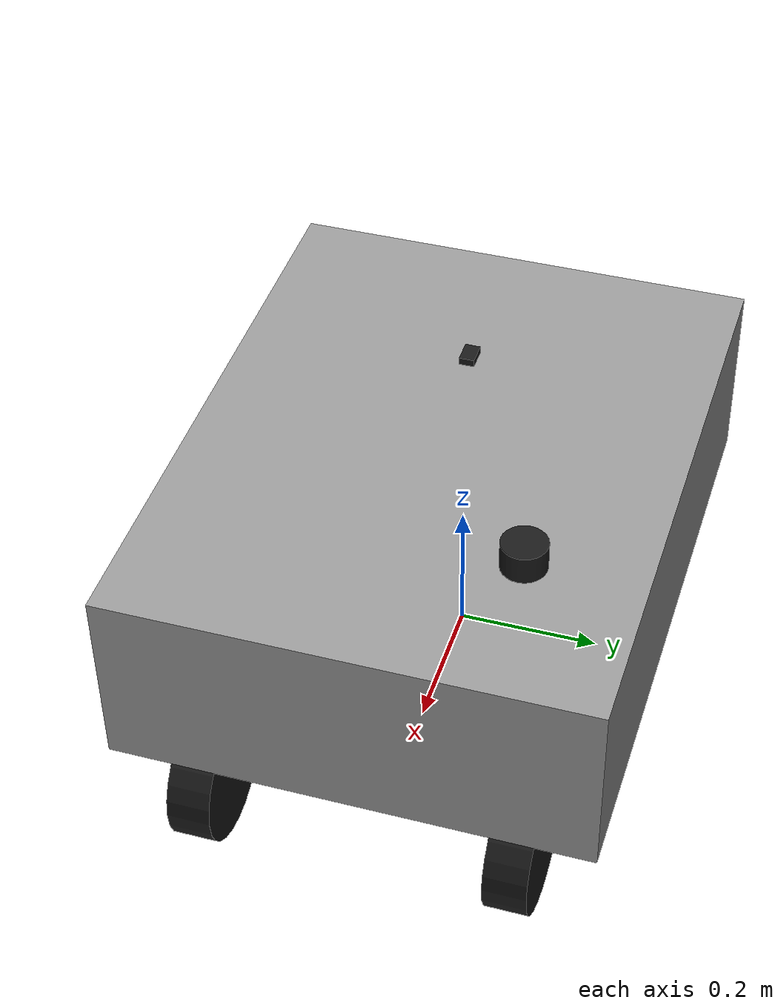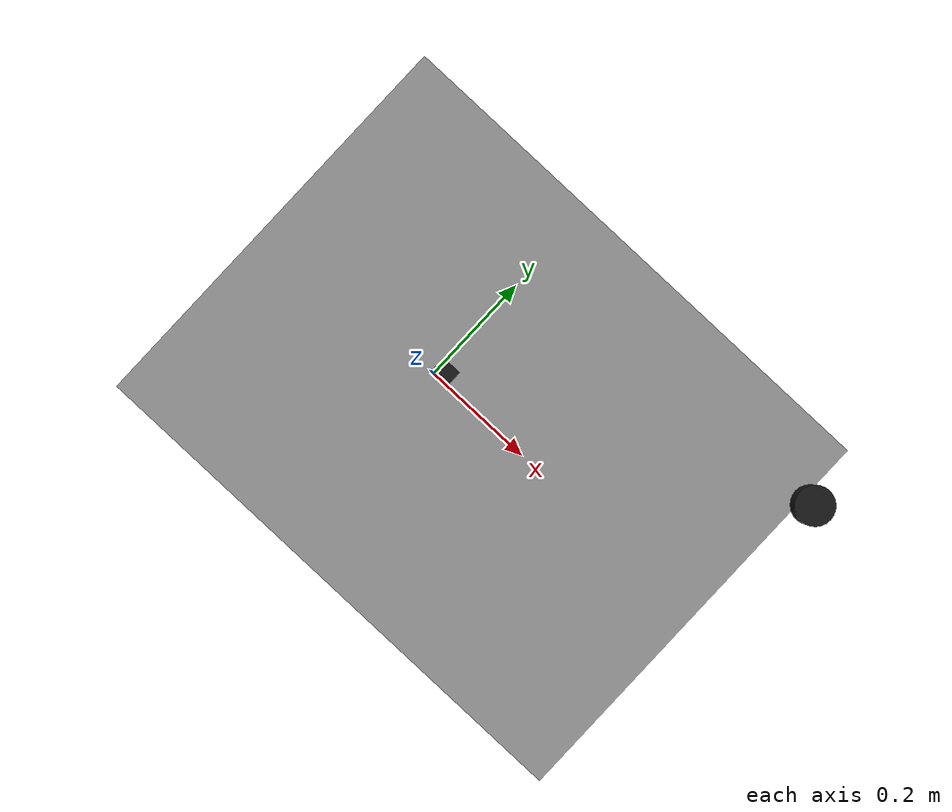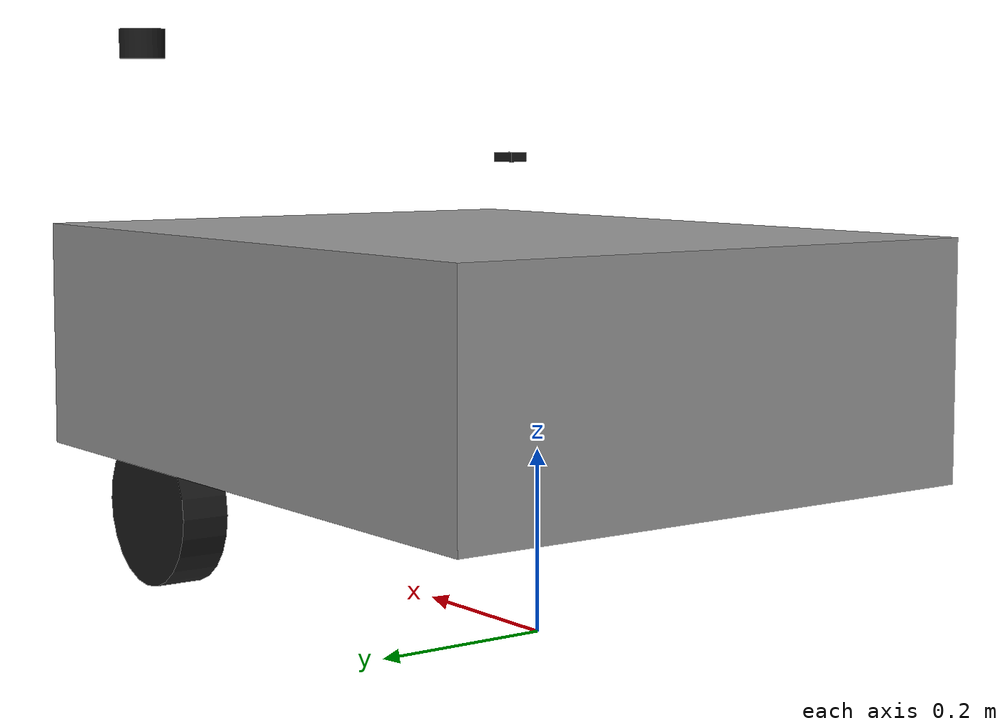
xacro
<?xml version="1.0"?>
<robot xmlns:xacro="http://www.ros.org/wiki/xacro" name="wheelchair">

  <!-- Arguments                                                 -->

  <!-- Base body -->
  <xacro:arg name="base_length" default="0.820"/>
  <xacro:arg name="base_width"  default="0.640"/>
  <xacro:arg name="base_height" default="0.260"/>
  <xacro:arg name="base_z"      default="0.171"/>

  <!-- LiDAR mount -->
  <xacro:arg name="lidar_x" default="0.500"/>
  <xacro:arg name="lidar_y" default="0.210"/>
  <xacro:arg name="lidar_z" default="0.471"/>
  <xacro:arg name="lidar_roll"  default="0.0"/>
  <xacro:arg name="lidar_pitch" default="0.0"/> <!-- TODO: Figure out if pitch should be 6.9 deg up -->
  <xacro:arg name="lidar_yaw"   default="0.0"/>

  <!-- IMU mount -->
  <xacro:arg name="imu_x" default="0.03"/>
  <xacro:arg name="imu_y" default="0.015"/>
  <xacro:arg name="imu_z" default="0.342"/>
  <xacro:arg name="imu_roll"  default="0.0"/>
  <xacro:arg name="imu_pitch" default="0.0"/>
  <xacro:arg name="imu_yaw"   default="6.28"/>

  <!-- Front caster wheels -->
  <xacro:arg name="front_caster_x"      default="0.450"/>
  <xacro:arg name="front_caster_y"      default="0.210"/>
  <xacro:arg name="front_caster_z"      default="-0.079"/>
  <xacro:arg name="front_caster_radius" default="0.092"/>
  <xacro:arg name="front_caster_width"  default="0.058"/>

  <!-- Properties                                                -->

  <xacro:property name="base_length_v" value="$(arg base_length)"/>
  <xacro:property name="base_width_v"  value="$(arg base_width)"/>
  <xacro:property name="base_height_v" value="$(arg base_height)"/>
  <xacro:property name="base_z_v"      value="$(arg base_z)"/>

  <xacro:property name="lidar_x_v" value="$(arg lidar_x)"/>
  <xacro:property name="lidar_y_v" value="$(arg lidar_y)"/>
  <xacro:property name="lidar_z_v" value="$(arg lidar_z)"/>
  <xacro:property name="lidar_roll_v"  value="$(arg lidar_roll)"/>
  <xacro:property name="lidar_pitch_v" value="$(arg lidar_pitch)"/>
  <xacro:property name="lidar_yaw_v"   value="$(arg lidar_yaw)"/>

  <xacro:property name="imu_x_v" value="$(arg imu_x)"/>
  <xacro:property name="imu_y_v" value="$(arg imu_y)"/>
  <xacro:property name="imu_z_v" value="$(arg imu_z)"/>
  <xacro:property name="imu_roll_v"  value="$(arg imu_roll)"/>
  <xacro:property name="imu_pitch_v" value="$(arg imu_pitch)"/>
  <xacro:property name="imu_yaw_v"   value="$(arg imu_yaw)"/>

  <xacro:property name="front_caster_x_v"      value="$(arg front_caster_x)"/>
  <xacro:property name="front_caster_y_v"      value="$(arg front_caster_y)"/>
  <xacro:property name="front_caster_z_v"      value="$(arg front_caster_z)"/>
  <xacro:property name="front_caster_radius_v" value="$(arg front_caster_radius)"/>
  <xacro:property name="front_caster_width_v"  value="$(arg front_caster_width)"/>

  <!-- Materials                                                 -->

  <material name="gray">
    <color rgba="0.6 0.6 0.6 1"/>
  </material>

  <material name="black">
    <color rgba="0.1 0.1 0.1 1"/>
  </material>

  <!-- Base                                                      -->

  <link name="base_footprint"/>

  <link name="base_link">
    <visual>
      <origin xyz="0.110 0 ${float(base_height_v)/2.0}" rpy="0 0 0"/>
      <geometry>
        <box size="${base_length_v} ${base_width_v} ${base_height_v}"/>
      </geometry>
      <material name="gray"/>
    </visual>

    <collision>
      <origin xyz="0.110 0 ${float(base_height_v)/2.0}" rpy="0 0 0"/>
      <geometry>
        <box size="${base_length_v} ${base_width_v} ${base_height_v}"/>
      </geometry>
    </collision>
  </link>

  <joint name="base_joint" type="fixed">
    <parent link="base_footprint"/>
    <child link="base_link"/>
    <origin xyz="0 0 ${base_z_v}" rpy="0 0 0"/>
  </joint>

  <!-- LiDAR                                                     -->

  <link name="ldlidar_base">
    <visual>
      <origin xyz="0 0 0" rpy="0 0 0"/>
      <geometry>
        <cylinder radius="0.027" length="0.0348"/>
      </geometry>
      <material name="black"/>
    </visual>
  </link>

  <joint name="lidar_joint" type="fixed">
    <parent link="base_link"/>
    <child link="ldlidar_base"/>
    <origin xyz="${lidar_x_v} ${lidar_y_v} ${lidar_z_v}"
            rpy="${lidar_roll_v} ${lidar_pitch_v} ${lidar_yaw_v}"/>
  </joint>

  <!-- IMU                                                       -->

  <link name="imu_link">
    <visual>
      <origin xyz="0 0 0" rpy="0 0 0"/>
      <geometry>
        <box size="0.03 0.02 0.01"/>
      </geometry>
      <material name="black"/>
    </visual>
  </link>

  <joint name="imu_joint" type="fixed">
    <parent link="base_link"/>
    <child link="imu_link"/>
    <origin xyz="${imu_x_v} ${imu_y_v} ${imu_z_v}"
            rpy="${imu_roll_v} ${imu_pitch_v} ${imu_yaw_v}"/>
  </joint>

  <!-- Front caster wheels (passive, fixed in URDF)             -->

  <link name="front_left_caster_link">
    <visual>
      <origin xyz="0 0 0" rpy="${pi/2} 0 0"/>
      <geometry>
        <cylinder radius="${front_caster_radius_v}" length="${front_caster_width_v}"/>
      </geometry>
      <material name="black"/>
    </visual>
    <collision>
      <origin xyz="0 0 0" rpy="${pi/2} 0 0"/>
      <geometry>
        <cylinder radius="${front_caster_radius_v}" length="${front_caster_width_v}"/>
      </geometry>
    </collision>
  </link>

  <joint name="front_left_caster_joint" type="fixed">
    <parent link="base_link"/>
    <child link="front_left_caster_link"/>
    <origin xyz="${front_caster_x_v} ${front_caster_y_v} ${front_caster_z_v}" rpy="0 0 0"/>
  </joint>

  <link name="front_right_caster_link">
    <visual>
      <origin xyz="0 0 0" rpy="${pi/2} 0 0"/>
      <geometry>
        <cylinder radius="${front_caster_radius_v}" length="${front_caster_width_v}"/>
      </geometry>
      <material name="black"/>
    </visual>
    <collision>
      <origin xyz="0 0 0" rpy="${pi/2} 0 0"/>
      <geometry>
        <cylinder radius="${front_caster_radius_v}" length="${front_caster_width_v}"/>
      </geometry>
    </collision>
  </link>

  <joint name="front_right_caster_joint" type="fixed">
    <parent link="base_link"/>
    <child link="front_right_caster_link"/>
    <origin xyz="${front_caster_x_v} ${-front_caster_y_v} ${front_caster_z_v}" rpy="0 0 0"/>
  </joint>

</robot>
